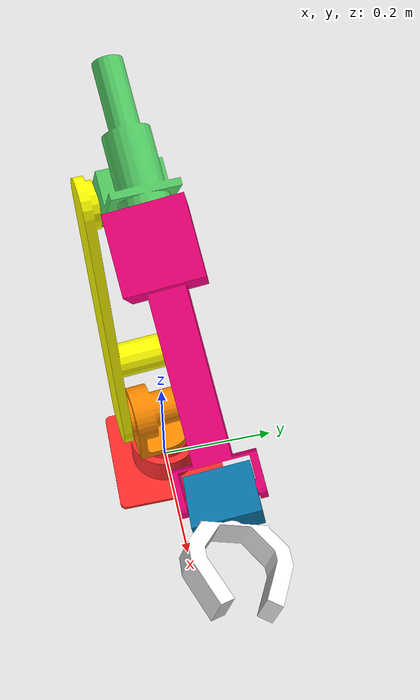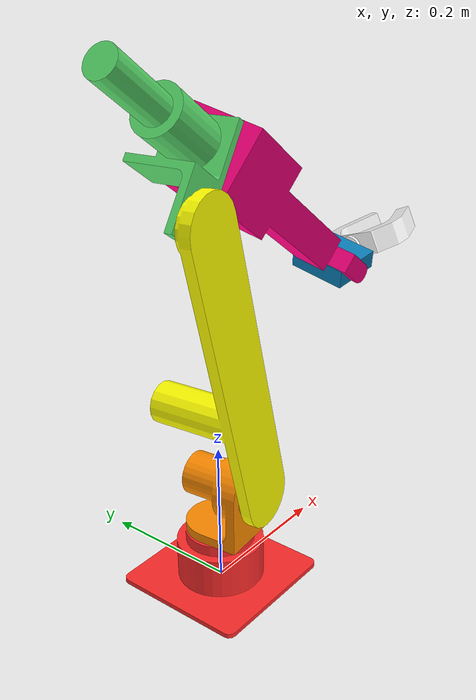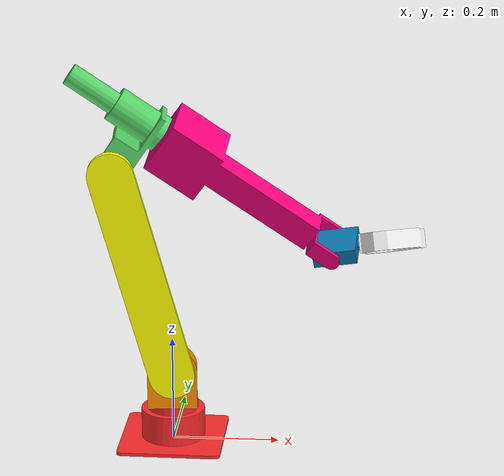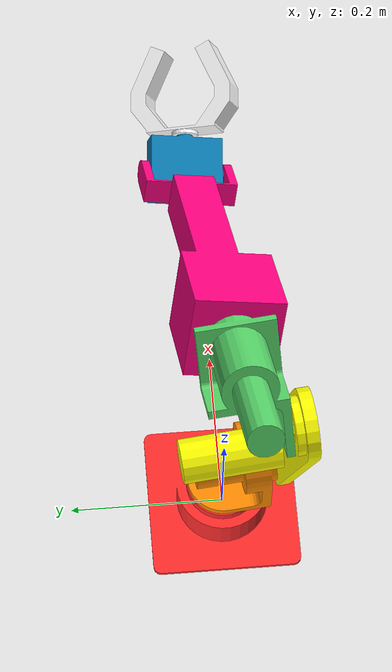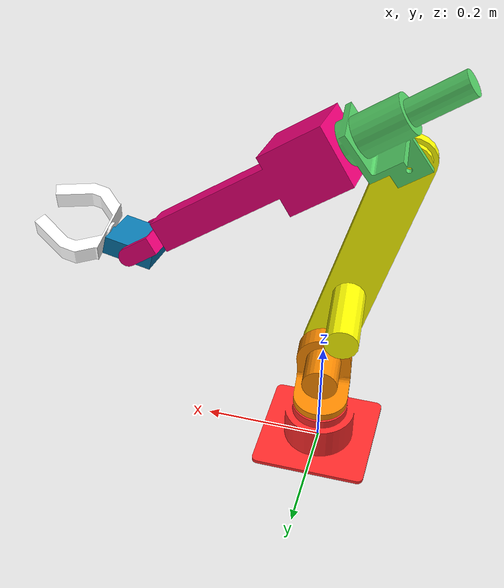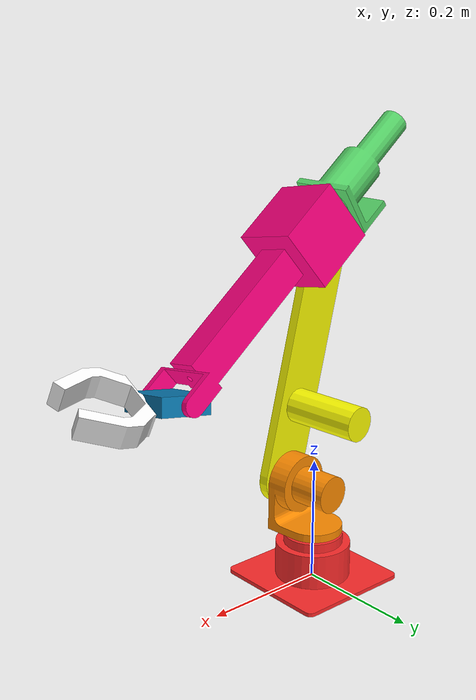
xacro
<?xml version="1.0"?>
<robot xmlns:xacro="http://www.ros.org/wiki/xacro" name="uwrt_mars_rover_arm_urdf">
    <xacro:arg name="initial_positions_file" default="initial_positions.yaml" />

    <!-- Import uwrt_mars_rover_arm_urdf urdf file -->
    <xacro:include filename="$(find uwrt_mars_rover_arm_urdf)/urdf/uwrt_mars_rover_arm_urdf.urdf" />

    <!-- Import control_xacro -->
    <xacro:include filename="uwrt_mars_rover_arm_urdf.ros2_control.xacro" />

    <xacro:uwrt_mars_rover_arm_urdf_ros2_control name="FakeSystem" initial_positions_file="$(arg initial_positions_file)"/>

</robot>

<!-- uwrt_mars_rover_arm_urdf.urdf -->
<robot
  name="uwrt_mars_rover_arm_urdf">

  <link
    name="Link_1">
    <inertial>
      <origin
        xyz="3.45284815353392E-18 5.9169086273473E-18 0.0311310323619364"
        rpy="0 0 0" />
      <mass
        value="0.9908768618455" />
      <inertia
        ixx="0.00193224199273723"
        ixy="-1.26558633720613E-19"
        ixz="1.0274980838522E-19"
        iyy="0.00193224199273723"
        iyz="-1.78493428935872E-21"
        izz="0.00277181976516411" />
    </inertial>
    <visual>
      <origin
        xyz="0 0 0"
        rpy="0 0 0" />
      <geometry>
        <mesh
          filename="package://uwrt_mars_rover_arm_urdf/meshes/Link_1.STL" />
      </geometry>
      <material
        name="">
        <color
          rgba="1 0.168627450980392 0.168627450980392 1" />
      </material>
    </visual>
    <collision>
      <origin
        xyz="0 0 0"
        rpy="0 0 0" />
      <geometry>
        <mesh
          filename="package://uwrt_mars_rover_arm_urdf/meshes/Link_1.STL" />
      </geometry>
    </collision>
  </link>
  <link
    name="Link_2">
    <inertial>
      <origin
        xyz="-4.33680868994202E-19 -0.0218746338869585 0.0584002783909983"
        rpy="0 0 0" />
      <mass
        value="0.595046244174356" />
      <inertia
        ixx="0.00111228081620128"
        ixy="6.09863722023096E-20"
        ixz="4.40457132572236E-20"
        iyy="0.00088455656527034"
        iyz="5.94084456703445E-05"
        izz="0.000786586541078942" />
    </inertial>
    <visual>
      <origin
        xyz="0 0 0"
        rpy="0 0 0" />
      <geometry>
        <mesh
          filename="package://uwrt_mars_rover_arm_urdf/meshes/Link_2.STL" />
      </geometry>
      <material
        name="">
        <color
          rgba="1 0.549019607843137 0 1" />
      </material>
    </visual>
    <collision>
      <origin
        xyz="0 0 0"
        rpy="0 0 0" />
      <geometry>
        <mesh
          filename="package://uwrt_mars_rover_arm_urdf/meshes/Link_2.STL" />
      </geometry>
    </collision>
  </link>

  <joint
    name="Joint_1"
    type="continuous">
    <origin
      xyz="0 0 0.080875"
      rpy="0 0 0.099642" />
    <parent
      link="Link_1" />
    <child
      link="Link_2" />
    <axis
      xyz="0 0 1" />
  </joint>
  <link
    name="Link_3">
    <inertial>
      <origin
        xyz="-0.0500963270913242 -0.0463282465480843 0.181541810274639"
        rpy="0 0 0" />
      <mass
        value="0.917184046508576" />
      <inertia
        ixx="0.0138200547681186"
        ixy="-0.000355406342064532"
        ixz="0.00331422153353445"
        iyy="0.0137432272963453"
        iyz="0.00128794094233421"
        izz="0.00272435445345874" />
    </inertial>
    <visual>
      <origin
        xyz="0 0 0"
        rpy="0 0 0" />
      <geometry>
        <mesh
          filename="package://uwrt_mars_rover_arm_urdf/meshes/Link_3.STL" />
      </geometry>
      <material
        name="">
        <color
          rgba="1 1 0 1" />
      </material>
    </visual>
    <collision>
      <origin
        xyz="0 0 0"
        rpy="0 0 0" />
      <geometry>
        <mesh
          filename="package://uwrt_mars_rover_arm_urdf/meshes/Link_3.STL" />
      </geometry>
    </collision>
  </link>
  <joint
    name="Joint_2"
    type="continuous">
    <origin
      xyz="0 0 0.0729"
      rpy="0 0 0" />
    <parent
      link="Link_2" />
    <child
      link="Link_3" />
    <axis
      xyz="0 -1 0" />
  </joint>
  <link
    name="Link_4">
    <inertial>
      <origin
        xyz="-0.0262805457025431 -0.00581840309059909 0.089983338733109"
        rpy="0 0 0" />
      <mass
        value="0.627049529568899" />
      <inertia
        ixx="0.000770744672626453"
        ixy="4.64450389757546E-05"
        ixz="0.00016982255346519"
        iyy="0.00215655937628312"
        iyz="-0.000130568285779622"
        izz="0.00191645497186894" />
    </inertial>
    <visual>
      <origin
        xyz="0 0 0"
        rpy="0 0 0" />
      <geometry>
        <mesh
          filename="package://uwrt_mars_rover_arm_urdf/meshes/Link_4.STL" />
      </geometry>
      <material
        name="">
        <color
          rgba="0.341176470588235 0.83921568627451 0.411764705882353 1" />
      </material>
    </visual>
    <collision>
      <origin
        xyz="0 0 0"
        rpy="0 0 0" />
      <geometry>
        <mesh
          filename="package://uwrt_mars_rover_arm_urdf/meshes/Link_4.STL" />
      </geometry>
    </collision>
  </link>
  <joint
    name="Joint_3"
    type="continuous">
    <origin
      xyz="-0.1064 0 0.38559"
      rpy="0 0.60304 0" />
    <parent
      link="Link_3" />
    <child
      link="Link_4" />
    <axis
      xyz="0 1 0" />
  </joint>
  <link
    name="Link_5">
    <inertial>
      <origin
        xyz="-0.0235787688200574 3.46944695195361E-16 -4.44089209850063E-16"
        rpy="0 0 0" />
      <mass
        value="1.7525834915569" />
      <inertia
        ixx="0.00241236974458071"
        ixy="-2.48011246956059E-18"
        ixz="3.03576608295941E-18"
        iyy="0.0178130242879475"
        iyz="1.51788304147971E-18"
        izz="0.0180488889834462" />
    </inertial>
    <visual>
      <origin
        xyz="0 0 0"
        rpy="0 0 0" />
      <geometry>
        <mesh
          filename="package://uwrt_mars_rover_arm_urdf/meshes/Link_5.STL" />
      </geometry>
      <material
        name="">
        <color
          rgba="1 0 0.501960784313725 1" />
      </material>
    </visual>
    <collision>
      <origin
        xyz="0 0 0"
        rpy="0 0 0" />
      <geometry>
        <mesh
          filename="package://uwrt_mars_rover_arm_urdf/meshes/Link_5.STL" />
      </geometry>
    </collision>
  </link>
  <joint
    name="Joint_4"
    type="continuous">
    <origin
      xyz="0.18399 -0.003 0.1"
      rpy="0.23732 0 0" />
    <parent
      link="Link_4" />
    <child
      link="Link_5" />
    <axis
      xyz="1 0 0" />
  </joint>
  <link
    name="Link_6">
    <inertial>
      <origin
        xyz="0.00389072410438487 -1.52655665885959E-16 0.00388651691525255"
        rpy="0 0 0" />
      <mass
        value="0.19600796507661" />
      <inertia
        ixx="0.000192825843805829"
        ixy="7.79270311473956E-20"
        ixz="-4.83685916802688E-05"
        iyy="0.000123065110112774"
        iyz="-4.06575814682064E-20"
        izz="0.000192930506049025" />
    </inertial>
    <visual>
      <origin
        xyz="0 0 0"
        rpy="0 0 0" />
      <geometry>
        <mesh
          filename="package://uwrt_mars_rover_arm_urdf/meshes/Link_6.STL" />
      </geometry>
      <material
        name="">
        <color
          rgba="0.0392156862745098 0.490196078431373 0.709803921568627 1" />
      </material>
    </visual>
    <collision>
      <origin
        xyz="0 0 0"
        rpy="0 0 0" />
      <geometry>
        <mesh
          filename="package://uwrt_mars_rover_arm_urdf/meshes/Link_6.STL" />
      </geometry>
    </collision>
  </link>
  <joint
    name="Joint_5"
    type="continuous">
    <origin
      xyz="0.24141 0 0"
      rpy="0 0 0" />
    <parent
      link="Link_5" />
    <child
      link="Link_6" />
    <axis
      xyz="0 1 0" />
  </joint>
  <link
    name="Gripper">
    <inertial>
      <origin
        xyz="0.0752759854032844 2.77555756156289E-17 5.55111512312578E-17"
        rpy="0 0 0" />
      <mass
        value="0.178504764370265" />
      <inertia
        ixx="0.000372353878585998"
        ixy="1.38913403349705E-19"
        ixz="-2.58345048912562E-19"
        iyy="0.000297871186553816"
        iyz="0.000147810410105188"
        izz="0.000457931478879934" />
    </inertial>
    <visual>
      <origin
        xyz="0 0 0"
        rpy="0 0 0" />
      <geometry>
        <mesh
          filename="package://uwrt_mars_rover_arm_urdf/meshes/Gripper.STL" />
      </geometry>
      <material
        name="">
        <color
          rgba="1 1 1 1" />
      </material>
    </visual>
    <collision>
      <origin
        xyz="0 0 0"
        rpy="0 0 0" />
      <geometry>
        <mesh
          filename="package://uwrt_mars_rover_arm_urdf/meshes/Gripper.STL" />
      </geometry>
    </collision>
  </link>
  <joint
    name="Joint_6"
    type="continuous">
    <origin
      xyz="0.02049 0 0.020468"
      rpy="0 -0.78486 0" />
    <parent
      link="Link_6" />
    <child
      link="Gripper" />
    <axis
      xyz="1 0 0" />
  </joint>
</robot>
